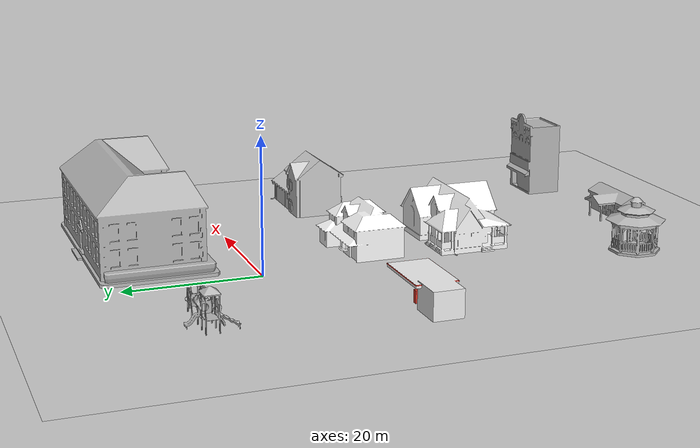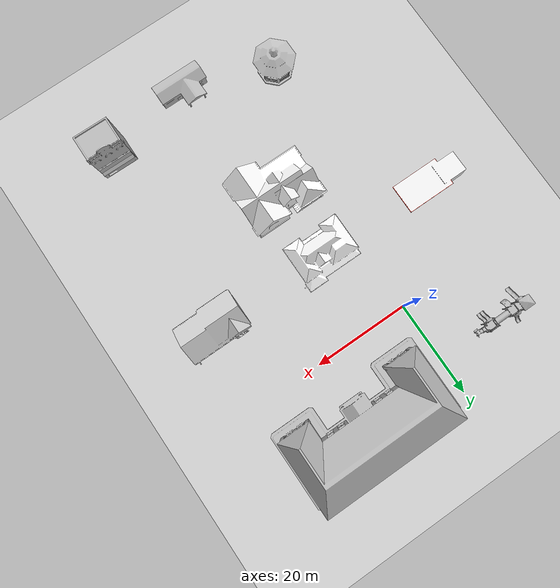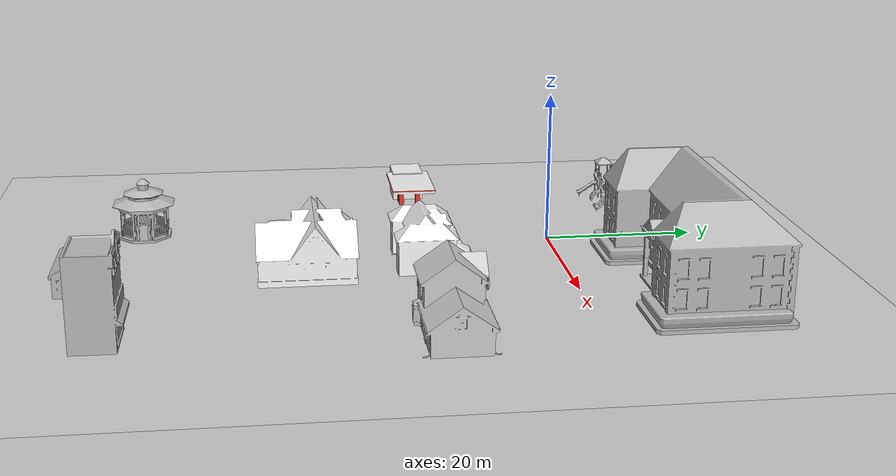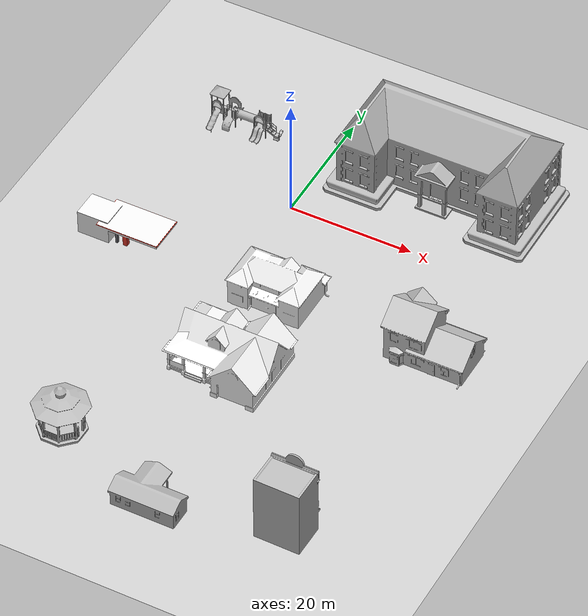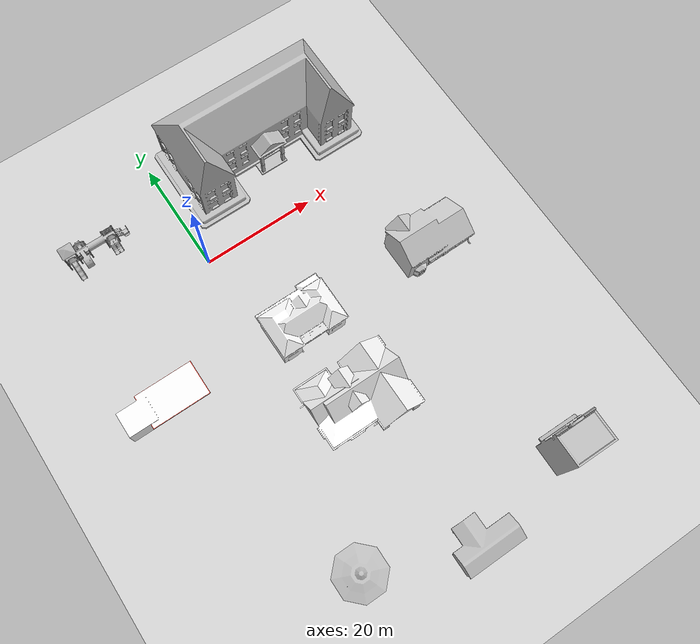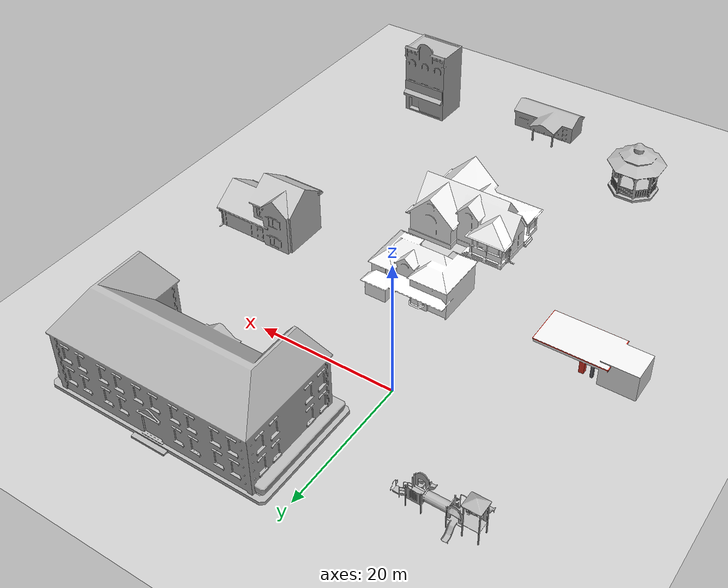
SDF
<sdf version="1.7">
 <world name="default">
  <light name="sun" type="directional">
   <pose>0 0 10 0 -0 0</pose>
   <diffuse>0.8 0.8 0.8 1</diffuse>
   <specular>0.2 0.2 0.2 1</specular>
   <attenuation>
    <range>1000</range>
    <constant>0.9</constant>
    <linear>0.01</linear>
    <quadratic>0.001</quadratic>
   </attenuation>
   <direction>-0.5 0.1 -0.9</direction>
   <spot><inner_angle>0</inner_angle><outer_angle>0</outer_angle><falloff>0</falloff></spot>
  </light>
  <gravity>0 0 -9.8</gravity>
  <magnetic_field>6e-06 2.3e-05 -4.2e-05</magnetic_field>
  <atmosphere type="adiabatic"/>
  <physics type="ode">
   <max_step_size>0.001</max_step_size>
   <real_time_factor>1</real_time_factor>
   <real_time_update_rate>1000</real_time_update_rate>
  </physics>
  <scene><ambient>0.4 0.4 0.4 1</ambient><background>0.7 0.7 0.7 1</background><shadows>1</shadows></scene>
  <spherical_coordinates>
   <surface_model>EARTH_WGS84</surface_model>
   <latitude_deg>0</latitude_deg>
   <longitude_deg>0</longitude_deg>
   <elevation>0</elevation>
   <heading_deg>0</heading_deg>
  </spherical_coordinates>
  <model name="my_ground_plane">
   <static>1</static>
   <link name="link">
    <collision name="collision">
     <laser_retro>255.0</laser_retro>
     <geometry><plane><normal>0 0 1</normal><size>100 100</size></plane></geometry>
     <surface><friction><ode><mu>100</mu><mu2>50</mu2></ode></friction></surface>
    </collision>
    <visual name="visual">
     <cast_shadows>0</cast_shadows>
     <geometry><plane><normal>0 0 1</normal><size>100 100</size></plane></geometry>
     <material>
      <script>
       <uri>model://my_ground_plane/materials/scripts</uri>
       <uri>model://my_ground_plane/materials/textures/</uri>
       <name>MyGroundPlane/Image</name>
      </script>
     </material>
    </visual>
   </link>
   <pose>-2.08461 -20.424 0 0 -0 0</pose>
  </model>
  <model name="gazebo">
   <static>1</static>
   <link name="link">
    <collision name="collision">
     <laser_retro>255.0</laser_retro>
     <geometry><mesh><scale>3 3 2.5</scale><uri>model://gazebo/meshes/gazebo.dae</uri></mesh></geometry>
    </collision>
    <visual name="visual">
     <laser_retro>255.0</laser_retro>
     <geometry><mesh><scale>3 3 2.5</scale><uri>model://gazebo/meshes/gazebo.dae</uri></mesh></geometry>
    </visual>
   </link>
   <pose>-7.21824 -54.7764 0 0 -0 0</pose>
  </model>
  <model name="House 1">
   <static>1</static>
   <link name="link">
    <collision name="collision">
     <laser_retro>255.0</laser_retro>
     <geometry><mesh><uri>model://house_1/meshes/house_1.dae</uri><scale>1.5 1.5 1.5</scale></mesh></geometry>
    </collision>
    <visual name="visual">
     <laser_retro>255.0</laser_retro>
     <geometry><mesh><uri>model://house_1/meshes/house_1.dae</uri><scale>1.5 1.5 1.5</scale></mesh></geometry>
     <material>
      <script>
       <uri>model://house_1/materials/scripts</uri>
       <uri>model://house_1/materials/textures</uri>
       <name>House_1/Diffuse</name>
      </script>
      <shader type="normal_map_tangent_space"><normal_map>House_1_Normal.png</normal_map></shader>
     </material>
    </visual>
   </link>
   <pose>7.80557 -32.7489 0 0 -0 0</pose>
  </model>
  <model name="House 2">
   <static>1</static>
   <link name="link">
    <collision name="collision">
     <laser_retro>255.0</laser_retro>
     <geometry><mesh><uri>model://house_2/meshes/house_2.dae</uri><scale>1.5 1.5 1.5</scale></mesh></geometry>
    </collision>
    <visual name="visual">
     <laser_retro>255.0</laser_retro>
     <geometry><mesh><uri>model://house_2/meshes/house_2.dae</uri><scale>1.5 1.5 1.5</scale></mesh></geometry>
     <material>
      <script>
       <uri>model://house_2/materials/scripts</uri>
       <uri>model://house_2/materials/textures</uri>
       <uri>model://house_1/materials/textures</uri>
       <name>House_2/Diffuse</name>
      </script>
      <shader type="normal_map_tangent_space">
       <normal_map>model://house_1/materials/textures/House_1_Normal.png</normal_map>
      </shader>
     </material>
    </visual>
   </link>
   <pose>6.12664 -17.9435 0 0 -0 0</pose>
  </model>
  <model name="House 3">
   <static>1</static>
   <link name="link">
    <collision name="collision">
     <laser_retro>255.0</laser_retro>
     <geometry><mesh><uri>model://house_3/meshes/house_3.dae</uri><scale>1.5 1.5 1.5</scale></mesh></geometry>
    </collision>
    <visual name="visual">
     <laser_retro>255.0</laser_retro>
     <geometry><mesh><uri>model://house_3/meshes/house_3.dae</uri><scale>1.5 1.5 1.5</scale></mesh></geometry>
     <material>
      <script>
       <uri>model://house_3/materials/scripts</uri>
       <uri>model://house_3/materials/textures</uri>
       <uri>model://house_1/materials/textures</uri>
       <name>House_3/Diffuse</name>
      </script>
      <shader type="normal_map_tangent_space">
       <normal_map>model://house_1/materials/textures/House_1_Normal.png</normal_map>
      </shader>
     </material>
    </visual>
   </link>
   <pose>33.0078 -17.3888 0 0 -0 0</pose>
  </model>
  <model name="playground">
   <static>1</static>
   <link name="link">
    <collision name="collision">
     <laser_retro>255.0</laser_retro>
     <geometry><mesh><uri>model://playground/meshes/playground.dae</uri></mesh></geometry>
    </collision>
    <visual name="visual">
     <laser_retro>255.0</laser_retro>
     <geometry><mesh><uri>model://playground/meshes/playground.dae</uri></mesh></geometry>
    </visual>
   </link>
   <pose>-14.2033 12.0174 0 0 -0 0</pose>
  </model>
  <model name="school">
   <static>1</static>
   <link name="link">
    <collision name="collision">
     <laser_retro>255.0</laser_retro>
     <geometry><mesh><uri>model://school/meshes/school.dae</uri></mesh></geometry>
    </collision>
    <visual name="visual">
     <laser_retro>255.0</laser_retro>
     <geometry><mesh><uri>model://school/meshes/school.dae</uri></mesh></geometry>
    </visual>
   </link>
   <pose>18.7496 16.5281 0 0 -0 0</pose>
  </model>
  <model name="salon">
   <static>1</static>
   <link name="link">
    <collision name="collision">
     <laser_retro>255.0</laser_retro>
     <pose>0 0 5.69469 0 -0 0</pose>
     <geometry><box><size>7.21297 5.37875 11.3894</size></box></geometry>
    </collision>
    <visual name="visual">
     <laser_retro>255.0</laser_retro>
     <pose>0 -0.903605 0 0 -0 0</pose>
     <geometry><mesh><uri>model://salon/meshes/salon.dae</uri></mesh></geometry>
    </visual>
   </link>
   <pose>30.0942 -57.4502 0 0 -0 3.12875</pose>
  </model>
  <model name="post_office">
   <static>1</static>
   <link name="link">
    <collision name="collision">
     <laser_retro>255.0</laser_retro>
     <geometry><mesh><uri>model://post_office/meshes/post_office.dae</uri></mesh></geometry>
    </collision>
    <visual name="visual">
     <laser_retro>255.0</laser_retro>
     <geometry><mesh><uri>model://post_office/meshes/post_office.dae</uri></mesh></geometry>
    </visual>
   </link>
   <pose>11.0468 -62.3017 0 0 -0 0</pose>
  </model>
  <model name="Gas Station">
   <static>1</static>
   <link name="link">
    <collision name="collision">
     <laser_retro>255.0</laser_retro>
     <geometry><mesh><uri>model://gas_station/meshes/gas_station.dae</uri></mesh></geometry>
    </collision>
    <visual name="visual">
     <laser_retro>255.0</laser_retro>
     <geometry><mesh><uri>model://gas_station/meshes/gas_station.dae</uri></mesh></geometry>
     <material>
      <script>
       <uri>model://gas_station/materials/scripts</uri>
       <uri>model://gas_station/materials/textures</uri>
       <name>GasStation/Diffuse</name>
      </script>
      <shader type="normal_map_tangent_space"><normal_map>GasStation_Normal.png</normal_map></shader>
     </material>
    </visual>
   </link>
   <pose>-18.9029 -16.99 0 0 -0 0</pose>
  </model>
 </world>
</sdf>
